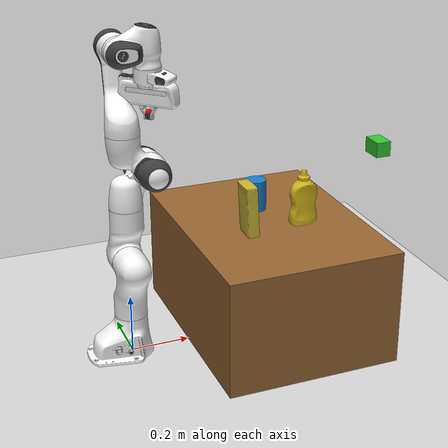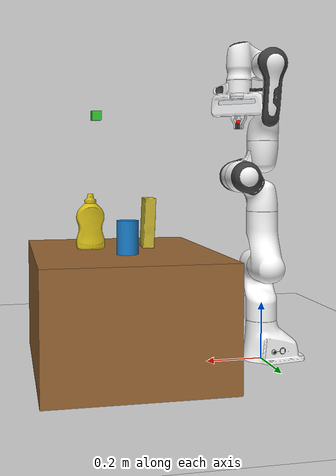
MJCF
<mujoco model="panda_grasp_scene_template">
  <compiler angle="radian" autolimits="true" balanceinertia="true"
            meshdir="/Users/bonolomasima/Desktop/Reasoning_via_Inference/mujoco_menagerie/franka_emika_panda/assets"/>
  <option gravity="0 0 -9.81" timestep="0.002" integrator="implicitfast"/>

  <visual>
    <global offwidth="1280" offheight="720"/>
  </visual>

  <!-- Contact solver: stiff, minimal penetration -->
  <default>
    <geom solref="0.004 1" solimp="0.98 0.99 0.001"/>
  </default>

  <default>
    <default class="panda">
      <material specular="0.5" shininess="0.25"/>
      <joint armature="0.1" damping="1" axis="0 0 1" range="-2.8973 2.8973"/>
      <general dyntype="none" biastype="affine"
               ctrlrange="-2.8973 2.8973" forcerange="-87 87"/>
      <default class="finger">
        <joint axis="0 1 0" type="slide" range="0 0.04"/>
      </default>
      <!-- Visual meshes: no collision, rendered in group 2 -->
      <default class="visual">
        <geom type="mesh" contype="0" conaffinity="0" group="2"/>
      </default>
      <!-- Collision meshes: physics only, not rendered -->
      <default class="collision">
        <geom type="mesh" group="3"/>
        <!-- Fingertip contact pads (box primitives on finger tips) -->
        <default class="fingertip_pad_collision_1">
          <geom type="box" size="0.0085 0.004 0.0085" pos="0 0.0055 0.0445"/>
        </default>
        <default class="fingertip_pad_collision_2">
          <geom type="box" size="0.003 0.002 0.003" pos="0.0055 0.002 0.05"/>
        </default>
        <default class="fingertip_pad_collision_3">
          <geom type="box" size="0.003 0.002 0.003" pos="-0.0055 0.002 0.05"/>
        </default>
        <default class="fingertip_pad_collision_4">
          <geom type="box" size="0.003 0.002 0.0035" pos="0.0055 0.002 0.0395"/>
        </default>
        <default class="fingertip_pad_collision_5">
          <geom type="box" size="0.003 0.002 0.0035" pos="-0.0055 0.002 0.0395"/>
        </default>
      </default>
    </default>
  </default>

  <asset>
    <!-- Materials (identical to Menagerie) -->
    <material class="panda" name="white"     rgba="1 1 1 1"/>
    <material class="panda" name="off_white" rgba="0.901961 0.921569 0.929412 1"/>
    <material class="panda" name="black"     rgba="0.25 0.25 0.25 1"/>
    <material class="panda" name="green"     rgba="0 1 0 1"/>
    <material class="panda" name="light_blue" rgba="0.039216 0.541176 0.780392 1"/>

    <!-- Collision meshes (low-poly STL) -->
    <mesh name="link0_c"  file="link0.stl"/>
    <mesh name="link1_c"  file="link1.stl"/>
    <mesh name="link2_c"  file="link2.stl"/>
    <mesh name="link3_c"  file="link3.stl"/>
    <mesh name="link4_c"  file="link4.stl"/>
    <mesh name="link5_c0" file="link5_collision_0.obj"/>
    <mesh name="link5_c1" file="link5_collision_1.obj"/>
    <mesh name="link5_c2" file="link5_collision_2.obj"/>
    <mesh name="link6_c"  file="link6.stl"/>
    <mesh name="link7_c"  file="link7.stl"/>
    <mesh name="hand_c"   file="hand.stl"/>

    <!-- Visual meshes — link0 -->
    <mesh file="link0_0.obj"/>
    <mesh file="link0_1.obj"/>
    <mesh file="link0_2.obj"/>
    <mesh file="link0_3.obj"/>
    <mesh file="link0_4.obj"/>
    <mesh file="link0_5.obj"/>
    <mesh file="link0_7.obj"/>
    <mesh file="link0_8.obj"/>
    <mesh file="link0_9.obj"/>
    <mesh file="link0_10.obj"/>
    <mesh file="link0_11.obj"/>
    <!-- Visual meshes — links 1–7 -->
    <mesh file="link1.obj"/>
    <mesh file="link2.obj"/>
    <mesh file="link3_0.obj"/>
    <mesh file="link3_1.obj"/>
    <mesh file="link3_2.obj"/>
    <mesh file="link3_3.obj"/>
    <mesh file="link4_0.obj"/>
    <mesh file="link4_1.obj"/>
    <mesh file="link4_2.obj"/>
    <mesh file="link4_3.obj"/>
    <mesh file="link5_0.obj"/>
    <mesh file="link5_1.obj"/>
    <mesh file="link5_2.obj"/>
    <mesh file="link6_0.obj"/>
    <mesh file="link6_1.obj"/>
    <mesh file="link6_2.obj"/>
    <mesh file="link6_3.obj"/>
    <mesh file="link6_4.obj"/>
    <mesh file="link6_5.obj"/>
    <mesh file="link6_6.obj"/>
    <mesh file="link6_7.obj"/>
    <mesh file="link6_8.obj"/>
    <mesh file="link6_9.obj"/>
    <mesh file="link6_10.obj"/>
    <mesh file="link6_11.obj"/>
    <mesh file="link6_12.obj"/>
    <mesh file="link6_13.obj"/>
    <mesh file="link6_14.obj"/>
    <mesh file="link6_15.obj"/>
    <mesh file="link6_16.obj"/>
    <mesh file="link7_0.obj"/>
    <mesh file="link7_1.obj"/>
    <mesh file="link7_2.obj"/>
    <mesh file="link7_3.obj"/>
    <mesh file="link7_4.obj"/>
    <mesh file="link7_5.obj"/>
    <mesh file="link7_6.obj"/>
    <mesh file="link7_7.obj"/>
    <!-- Visual meshes — hand and fingers -->
    <mesh file="hand_0.obj"/>
    <mesh file="hand_1.obj"/>
    <mesh file="hand_2.obj"/>
    <mesh file="hand_3.obj"/>
    <mesh file="hand_4.obj"/>
    <mesh file="finger_0.obj"/>
    <mesh file="finger_1.obj"/>

        <mesh name="ycb_sugarbox_visual" file="/Users/bonolomasima/Desktop/Reasoning_via_Inference/assets/ycb/sugar_box/visual.obj"/>
    <mesh name="ycb_mustard_visual" file="/Users/bonolomasima/Desktop/Reasoning_via_Inference/assets/ycb/mustard_bottle/visual.obj"/>
  </asset>

  <worldbody>
    <light pos="0 0 2.5" dir="0 0 -1" directional="true"/>
    <geom name="floor" type="plane" size="2 2 0.05" rgba="0.85 0.85 0.85 1"/>

    <!-- Table -->
    <body name="table" pos="0.5 0 0.2">
      <geom type="box" size="0.3 0.4 0.2" rgba="0.6 0.4 0.2 1"/>
    </body>

        <body name="obj_cylinder" pos="0.5 0.11 0.455">
      <freejoint/>
      <inertial pos="0 0 0" mass="0.05" diaginertia="0.0002 0.0002 0.0001"/>
      <geom name="cup" type="cylinder" size="0.036 0.055" rgba="0.1 0.5 0.8 1.0" mass="0.05" condim="4" friction="2.5 0.01 0.0001"/>
    </body>
    <body name="obj_box" pos="0.40473720558371173 -0.055000000000000014 0.4">
      <freejoint/>
      <inertial pos="0 0 0" mass="0.06" diaginertia="0.0002 0.000167 5.66e-05"/>
      <geom name="sugarbox_target_vis" type="mesh" mesh="ycb_sugarbox_visual" rgba="0.8 0.72 0.2 1.0" contype="0" conaffinity="0" group="2"/>
      <geom name="sugarbox_target_col" type="box" pos="-0.007467 -0.016712 0.088039" size="0.024748 0.047081 0.088008" mass="0.06" condim="4" friction="2.0 0.01 0.0001" group="3" rgba="0.8 0.72 0.2 0"/>
    </body>
    <body name="obj_mustard" pos="0.5952627944162883 -0.05500000000000005 0.48397300000000004">
      <freejoint/>
      <inertial pos="0 0 0" mass="0.08" diaginertia="0.001 0.001 0.0003"/>
      <geom name="mustard_target_vis" type="mesh" mesh="ycb_mustard_visual" rgba="0.85 0.75 0.1 1.0" contype="0" conaffinity="0" group="2"/>
      <geom name="mustard_target_col" type="box" pos="0.0053 -0.0076 0.0118" size="0.0482 0.0291 0.0958" mass="0.08" condim="4" friction="2.0 0.01 0.0001" group="3" rgba="0.85 0.75 0.1 0"/>
    </body>

    <body name="link0" pos="0 0 0" childclass="panda">
      <inertial mass="0.629769" pos="-0.041018 -0.00014 0.049974"
        fullinertia="0.00315 0.00388 0.004285 8.2904e-7 0.00015 8.2299e-6"/>
      <geom mesh="link0_0"  material="off_white" class="visual"/>
      <geom mesh="link0_1"  material="black"     class="visual"/>
      <geom mesh="link0_2"  material="off_white" class="visual"/>
      <geom mesh="link0_3"  material="black"     class="visual"/>
      <geom mesh="link0_4"  material="off_white" class="visual"/>
      <geom mesh="link0_5"  material="black"     class="visual"/>
      <geom mesh="link0_7"  material="white"     class="visual"/>
      <geom mesh="link0_8"  material="white"     class="visual"/>
      <geom mesh="link0_9"  material="black"     class="visual"/>
      <geom mesh="link0_10" material="off_white" class="visual"/>
      <geom mesh="link0_11" material="white"     class="visual"/>
      <geom mesh="link0_c" class="collision"/>

      <body name="link1" pos="0 0 0.333">
        <inertial mass="4.970684" pos="0.003875 0.002081 -0.04762"
          fullinertia="0.70337 0.70661 0.0091170 -0.00013900 0.0067720 0.019169"/>
        <joint name="joint1"/>
        <geom mesh="link1" material="white" class="visual"/>
        <geom mesh="link1_c" class="collision"/>

        <!-- quat "1 -1 0 0" = 90 deg rotation around -X -->
        <body name="link2" quat="1 -1 0 0">
          <inertial mass="0.646926" pos="-0.003141 -0.02872 0.003495"
            fullinertia="0.0079620 2.8110e-2 2.5995e-2 -3.925e-3 1.0254e-2 7.04e-4"/>
          <joint name="joint2" range="-1.7628 1.7628"/>
          <geom mesh="link2" material="white" class="visual"/>
          <geom mesh="link2_c" class="collision"/>

          <body name="link3" pos="0 -0.316 0" quat="1 1 0 0">
            <joint name="joint3"/>
            <inertial mass="3.228604" pos="2.7518e-2 3.9252e-2 -6.6502e-2"
              fullinertia="3.7242e-2 3.6155e-2 1.083e-2 -4.761e-3 -1.1396e-2 -1.2805e-2"/>
            <geom mesh="link3_0" material="white" class="visual"/>
            <geom mesh="link3_1" material="white" class="visual"/>
            <geom mesh="link3_2" material="white" class="visual"/>
            <geom mesh="link3_3" material="black" class="visual"/>
            <geom mesh="link3_c" class="collision"/>

            <body name="link4" pos="0.0825 0 0" quat="1 1 0 0">
              <inertial mass="3.587895" pos="-5.317e-2 1.04419e-1 2.7454e-2"
                fullinertia="2.5853e-2 1.9552e-2 2.8323e-2 7.796e-3 -1.332e-3 8.641e-3"/>
              <joint name="joint4" range="-3.0718 -0.0698"/>
              <geom mesh="link4_0" material="white" class="visual"/>
              <geom mesh="link4_1" material="white" class="visual"/>
              <geom mesh="link4_2" material="black" class="visual"/>
              <geom mesh="link4_3" material="white" class="visual"/>
              <geom mesh="link4_c" class="collision"/>

              <body name="link5" pos="-0.0825 0.384 0" quat="1 -1 0 0">
                <inertial mass="1.225946" pos="-1.1953e-2 4.1065e-2 -3.8437e-2"
                  fullinertia="3.5549e-2 2.9474e-2 8.627e-3 -2.117e-3 -4.037e-3 2.29e-4"/>
                <joint name="joint5"/>
                <geom mesh="link5_0" material="black" class="visual"/>
                <geom mesh="link5_1" material="white" class="visual"/>
                <geom mesh="link5_2" material="white" class="visual"/>
                <geom mesh="link5_c0" class="collision"/>
                <geom mesh="link5_c1" class="collision"/>
                <geom mesh="link5_c2" class="collision"/>

                <body name="link6" quat="1 1 0 0">
                  <inertial mass="1.666555" pos="6.0149e-2 -1.4117e-2 -1.0517e-2"
                    fullinertia="1.964e-3 4.354e-3 5.433e-3 1.09e-4 -1.158e-3 3.41e-4"/>
                  <joint name="joint6" range="-0.0175 3.7525"/>
                  <geom mesh="link6_0"  material="off_white"  class="visual"/>
                  <geom mesh="link6_1"  material="white"      class="visual"/>
                  <geom mesh="link6_2"  material="black"      class="visual"/>
                  <geom mesh="link6_3"  material="white"      class="visual"/>
                  <geom mesh="link6_4"  material="white"      class="visual"/>
                  <geom mesh="link6_5"  material="white"      class="visual"/>
                  <geom mesh="link6_6"  material="white"      class="visual"/>
                  <geom mesh="link6_7"  material="light_blue" class="visual"/>
                  <geom mesh="link6_8"  material="light_blue" class="visual"/>
                  <geom mesh="link6_9"  material="black"      class="visual"/>
                  <geom mesh="link6_10" material="black"      class="visual"/>
                  <geom mesh="link6_11" material="white"      class="visual"/>
                  <geom mesh="link6_12" material="green"      class="visual"/>
                  <geom mesh="link6_13" material="white"      class="visual"/>
                  <geom mesh="link6_14" material="black"      class="visual"/>
                  <geom mesh="link6_15" material="black"      class="visual"/>
                  <geom mesh="link6_16" material="white"      class="visual"/>
                  <geom mesh="link6_c" class="collision"/>

                  <body name="link7" pos="0.088 0 0" quat="1 1 0 0">
                    <inertial mass="7.35522e-01" pos="1.0517e-2 -4.252e-3 6.1597e-2"
                      fullinertia="1.2516e-2 1.0027e-2 4.815e-3 -4.28e-4 -1.196e-3 -7.41e-4"/>
                    <joint name="joint7"/>
                    <geom mesh="link7_0" material="white" class="visual"/>
                    <geom mesh="link7_1" material="black" class="visual"/>
                    <geom mesh="link7_2" material="black" class="visual"/>
                    <geom mesh="link7_3" material="black" class="visual"/>
                    <geom mesh="link7_4" material="black" class="visual"/>
                    <geom mesh="link7_5" material="black" class="visual"/>
                    <geom mesh="link7_6" material="black" class="visual"/>
                    <geom mesh="link7_7" material="white" class="visual"/>
                    <geom mesh="link7_c" class="collision"/>

                    <!-- Hand: quat "0.9238795 0 0 -0.3826834" = -45 deg around Z -->
                    <body name="hand" pos="0 0 0.107" quat="0.9238795 0 0 -0.3826834">
                      <inertial mass="0.73" pos="-0.01 0 0.03"
                        diaginertia="0.001 0.0025 0.0017"/>
                      <geom mesh="hand_0" material="off_white" class="visual"/>
                      <geom mesh="hand_1" material="black"     class="visual"/>
                      <geom mesh="hand_2" material="black"     class="visual"/>
                      <geom mesh="hand_3" material="white"     class="visual"/>
                      <geom mesh="hand_4" material="off_white" class="visual"/>
                      <geom mesh="hand_c" class="collision"/>
                      <!-- End-effector site (target for IK) -->
                      <site name="ee_site" pos="0 0 0.09" size="0.01"
                            rgba="1 0 0 1" type="sphere"/>

                      <!-- Left finger — slides +Y along joint axis -->
                      <body name="left_finger" pos="0 0 0.0584">
                        <inertial mass="0.015" pos="0 0 0"
                          diaginertia="2.375e-6 2.375e-6 7.5e-7"/>
                        <joint name="finger_joint1" class="finger"/>
                        <geom mesh="finger_0" material="off_white" class="visual"/>
                        <geom mesh="finger_1" material="black"     class="visual"/>
                        <!-- STL-equivalent collision (same mesh as visual for finger) -->
                        <geom mesh="finger_0" class="collision"/>
                        <geom class="fingertip_pad_collision_1"/>
                        <geom class="fingertip_pad_collision_2"/>
                        <geom class="fingertip_pad_collision_3"/>
                        <geom class="fingertip_pad_collision_4"/>
                        <geom class="fingertip_pad_collision_5"/>
                      </body>

                      <!-- Right finger — identity quat, same as Menagerie; mesh geometry handles mirroring -->
                      <body name="right_finger" pos="0 0 0.0584" quat="0 0 0 1">
                        <inertial mass="0.015" pos="0 0 0"
                          diaginertia="2.375e-6 2.375e-6 7.5e-7"/>
                        <joint name="finger_joint2" class="finger"/>
                        <geom mesh="finger_0" material="off_white" class="visual"/>
                        <geom mesh="finger_1" material="black"     class="visual"/>
                        <geom mesh="finger_0" class="collision"/>
                        <geom class="fingertip_pad_collision_1"/>
                        <geom class="fingertip_pad_collision_2"/>
                        <geom class="fingertip_pad_collision_3"/>
                        <geom class="fingertip_pad_collision_4"/>
                        <geom class="fingertip_pad_collision_5"/>
                      </body>
                    </body>
                  </body>
                </body>
              </body>
            </body>
          </body>
        </body>
      </body>
    </body>

    <!-- Perception camera body (position set programmatically per trial) -->
    <body name="perception_camera_body" pos="0.5 -0.7 0.9">
      <camera name="perception_camera" pos="0 0 0" fovy="45"/>
      <geom type="box" size="0.02 0.03 0.02" rgba="0.2 0.8 0.2 1"
            contype="0" conaffinity="0"/>
    </body>
  </worldbody>

  <!-- Coupled fingers via tendon (same as panda.xml) -->
  <tendon>
    <fixed name="split">
      <joint joint="finger_joint1" coef="0.5"/>
      <joint joint="finger_joint2" coef="0.5"/>
    </fixed>
  </tendon>

  <equality>
    <joint joint1="finger_joint1" joint2="finger_joint2"
           solimp="0.95 0.99 0.001" solref="0.005 1"/>
  </equality>

  <!-- Actuators — identical gain/bias to panda.xml for realistic dynamics -->
  <actuator>
    <general class="panda" name="actuator1" joint="joint1"
             gainprm="4500" biasprm="0 -4500 -450"/>
    <general class="panda" name="actuator2" joint="joint2"
             gainprm="4500" biasprm="0 -4500 -450"
             ctrlrange="-1.7628 1.7628"/>
    <general class="panda" name="actuator3" joint="joint3"
             gainprm="3500" biasprm="0 -3500 -350"/>
    <general class="panda" name="actuator4" joint="joint4"
             gainprm="3500" biasprm="0 -3500 -350"
             ctrlrange="-3.0718 -0.0698"/>
    <general class="panda" name="actuator5" joint="joint5"
             gainprm="2000" biasprm="0 -2000 -200" forcerange="-12 12"/>
    <general class="panda" name="actuator6" joint="joint6"
             gainprm="2000" biasprm="0 -2000 -200" forcerange="-12 12"
             ctrlrange="-0.0175 3.7525"/>
    <general class="panda" name="actuator7" joint="joint7"
             gainprm="2000" biasprm="0 -2000 -200" forcerange="-12 12"/>
    <!-- Finger actuator via tendon. ctrl=255 → open (0.04 m), ctrl=0 → closed.
         Remap: 0.04 m * (100/255) = 0.01568627451 gain -->
    <general class="panda" name="actuator8" tendon="split"
             forcerange="-100 100" ctrlrange="0 255"
             gainprm="0.01568627451 0 0" biasprm="0 -100 -10"/>
  </actuator>

  <contact>
    <exclude body1="hand" body2="left_finger"/>
    <exclude body1="hand" body2="right_finger"/>
  </contact>
</mujoco>
